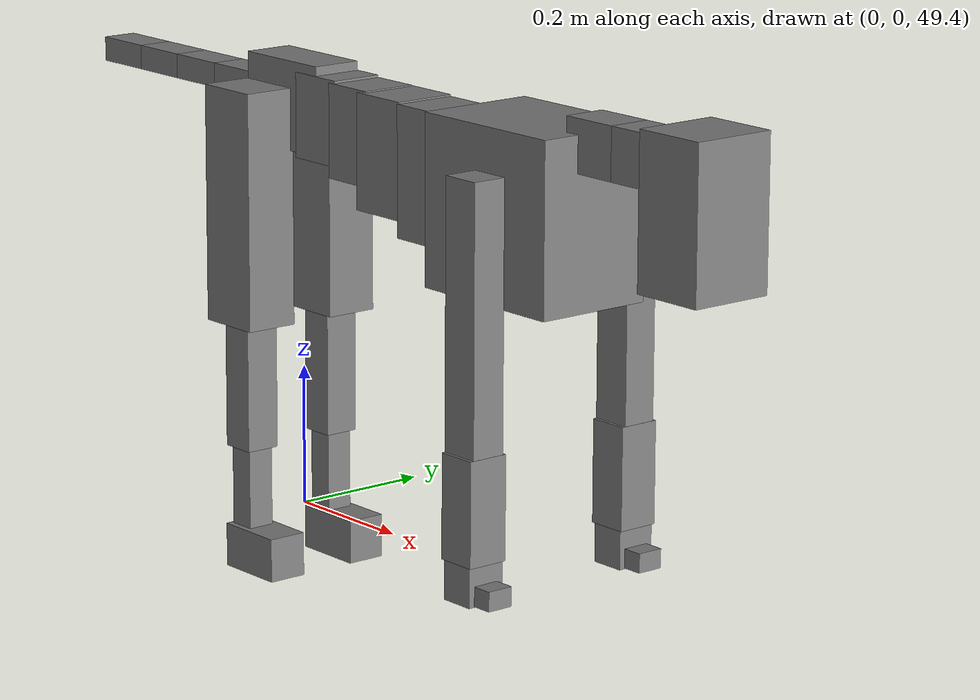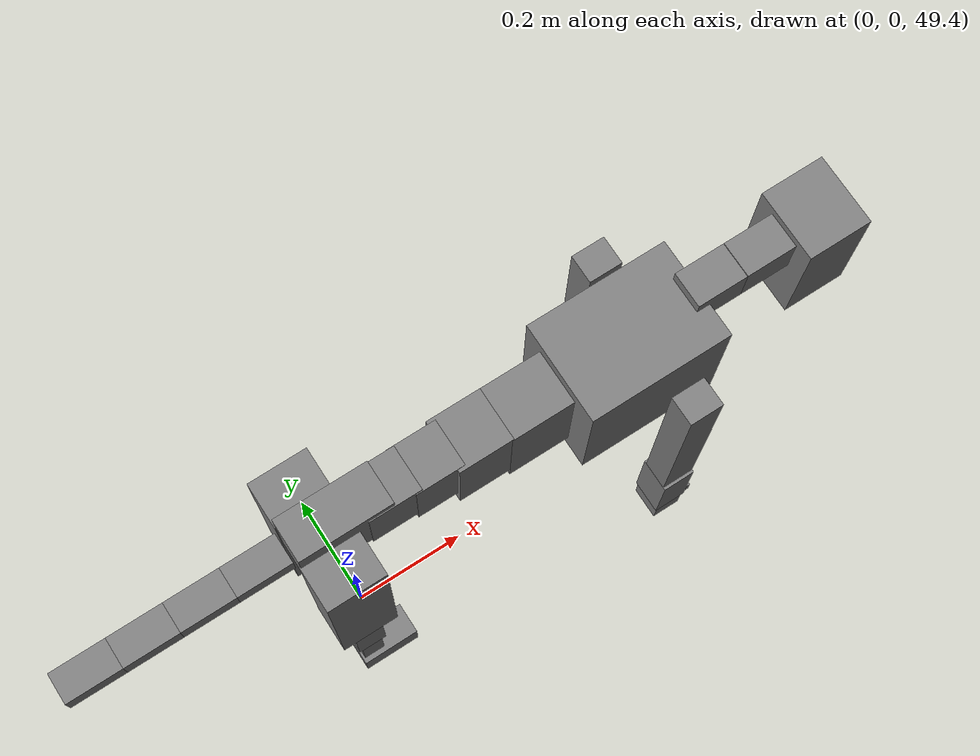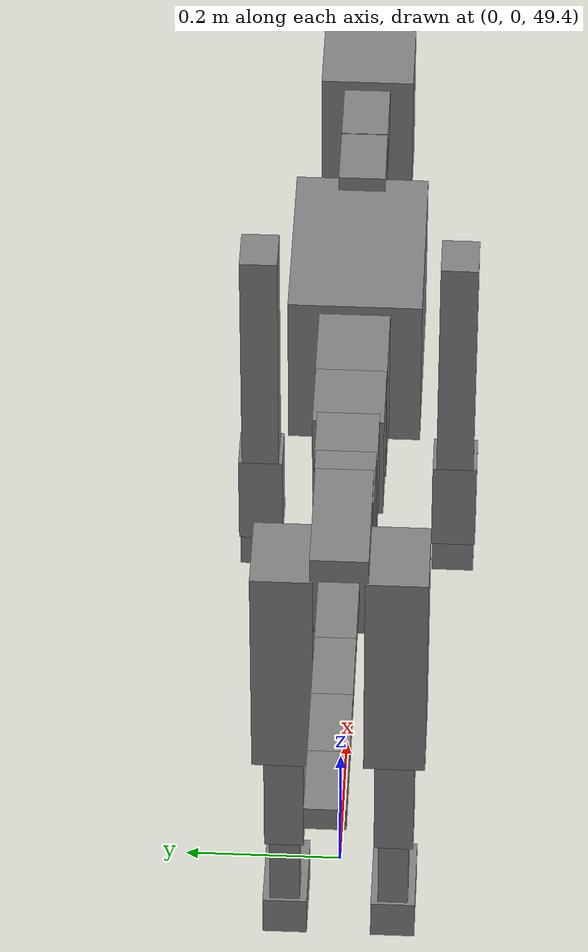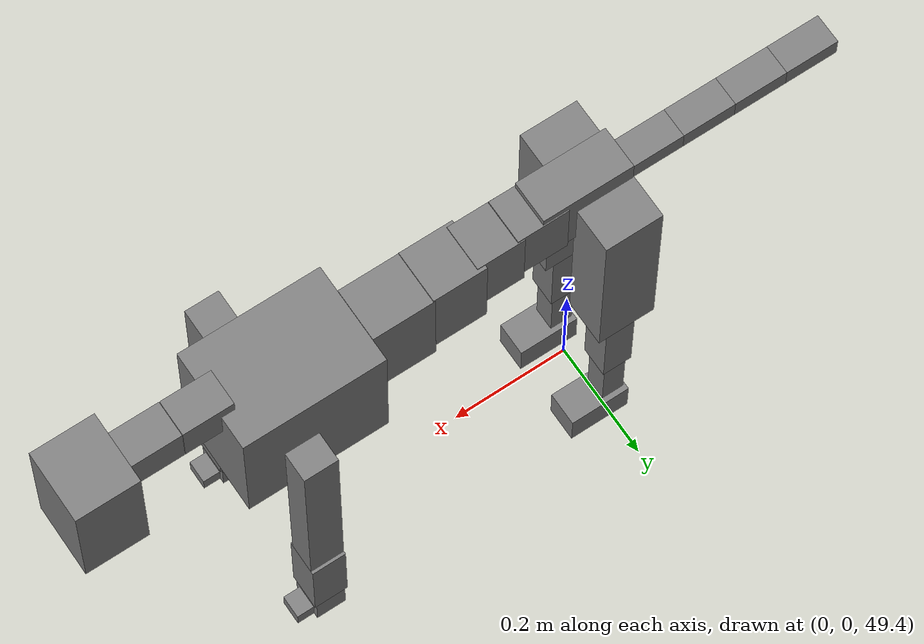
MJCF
<mujoco model="dog">

    <default>
        <joint armature="0.02" stiffness="1" damping="0.2" limited="true"/>
        <geom condim="3" friction="1 0.05 0.05" margin="0.01"/>
        <motor ctrllimited="true" ctrlrange="-1.0 1.0" forcelimited="true" gear="50"/>
    </default>

    <compiler inertiafromgeom="true" angle="radian"/>

    <option timestep="0.016" iterations="50" tolerance="1e-10" solver="Newton" jacobian="dense" cone="pyramidal"/>

    <size nconmax="20000" njmax="60000" nstack="5000000"/>
    <visual>
        <map force="0.1" zfar="30"/>
        <rgba haze="0.15 0.25 0.35 1"/>
        <quality shadowsize="2048"/>
        <global offwidth="800" offheight="800"/>
    </visual>

    <asset>
        <texture type="skybox" builtin="gradient" rgb1="0.3 0.5 0.7" rgb2="0 0 0" width="512" height="512"/>
        <texture name="texplane" type="2d" builtin="checker" rgb1=".2 .3 .4" rgb2=".1 0.15 0.2" width="512" height="512"
                 mark="cross" markrgb=".8 .8 .8"/>
        <texture name="texgeom" type="cube" builtin="flat" mark="cross" width="127" height="1278" rgb1="0.8 0.6 0.4"
                 rgb2="0.8 0.6 0.4" markrgb="1 1 1" random="0.01"/>

        <material name="matplane" reflectance="0.3" texture="texplane" texrepeat="1 1" texuniform="true"/>
        <material name="matgeom" texture="texgeom" texuniform="true" rgba="0.8 0.6 .4 1"/>
    </asset>

    <worldbody>
        <geom name="floor" pos="0 0 0" size="0 0 .25" type="plane" material="matplane" condim="3"/>

        <light directional="false" diffuse=".2 .2 .2" specular="0 0 0" pos="0 0 5" dir="0 0 -1" castshadow="false"/>
        <light mode="targetbodycom" target="torso" directional="false" diffuse=".8 .8 .8" specular="0.3 0.3 0.3"
               pos="0 0 4.0" dir="0 0 -1"/>

        <body name="root" pos="0 0 50">
            <freejoint name="root_1"/>
            <geom type="box" pos="0 0 -0.02" size="0.0774  0.0358  0.063" density="2030"/>

            <body name="spine1" pos="0.054 0 0">
                <joint name="spine1_y" axis="0 1 0" range="0 0.7" limited="true"/>
                <geom type="box" pos="0.02375 0 -0.03" size="0.04375  0.0375  0.05985" density="2030"/>

                <body name="spine2" pos="0.0612 0 0">
                    <joint name="spine2_y" axis="0 1 0" range="-0.15 0.15" limited="true"/>
                    <geom type="box" pos="0.03555  0  -0.04" size="0.04055  0.039  0.06615" density="2030"/>

                    <body name="spine3" pos="0.0730 0 0">
                        <joint name="spine3_y" axis="0 1 0" range="-0.15 0.15" limited="true"/>
                        <geom type="box" pos="0.03555  0  -0.057" size="0.04555  0.0445  0.081" density="2030"/>

                        <body name="spine4" pos="0.0780 0 0">
                            <joint name="spine4_y" axis="0 1 0" range="-0.15 0.15" limited="true"/>
                            <geom type="box" pos="0.05265  0  -0.07" size="0.05265  0.045  0.09135" density="2030"/>

                            <body name="torso" pos="0.1082 0 0">
                                <joint name="torso_y" axis="0 1 0" range="-0.15 0.15" limited="true"/>
                                <geom type="box" pos="0.11925  0  -0.085" size="0.11925  0.085  0.11745"
                                      density="2030"/>

                                <body name="neck1" pos="0.2160  0   0.0180">
                                    <joint name="neck1_y" axis="0 1 0" range="-1.2  -1" limited="true"/>
                                    <geom type="box" pos="0.0423  0  0" size="0.0423  0.03  0.036" density="2325"/>

                                    <body name="neck2" pos="0.0853  0  0">
                                        <joint name="neck2_y" axis="0 1 0" range="0.1  0" limited="true"/>
                                        <geom type="box" pos="0.0423  0  0" size="0.0423  0.03  0.036" density="2325"/>

                                        <body name="head" pos="0.0853  0  0">
                                            <joint name="head_y" axis="0 1 0" range="-0.3  -0.2" limited="true"/>
                                            <geom type="box" pos="0.0531  0  -0.055" size="0.0531  0.06  0.1044"
                                                  density="4030"/>

                                        </body>
                                    </body>
                                </body>

                                <body name="front_shoulder" pos="0.156  0   -0.0480">
                                    <joint name="front_shoulder_y" axis="0 1 0" range="-1 1.5" limited="true"/>
                                    <geom type="box" pos="0 0.13 -0.1689" size="0.0287  0.0245  0.1956" density="1158"/>
                                    <geom type="box" pos="0 -0.13 -0.1689" size="0.0287  0.0245  0.1956"
                                          density="1158"/>

                                    <body name="front_elbow" pos="0  0  -0.3378">
                                        <joint name="front_elbow_y" axis="0 1 0" range="-2 0" limited="true"/>
                                        <geom type="box" pos="0 0.13 -0.0718" size="0.0288  0.0294  0.0718"
                                              density="1081"/>
                                        <geom type="box" pos="0 -0.13 -0.0718" size="0.0288  0.0294  0.0718"
                                              density="1081"/>

                                        <body name="front_wrist" pos="0  0  -0.1436">
                                            <joint name="front_wrist_y" axis="0 1 0" range="-0.2 0" limited="true"/>
                                            <geom type="box" pos="0 0.13 -0.0206" size="0.0251  0.0279  0.0338"
                                                  density="1664"/>
                                            <geom type="box" pos="0 -0.13 -0.0206" size="0.0251  0.0279  0.0338"
                                                  density="1664"/>

                                            <body name="front_finger_end" pos="0  0  -0.0413">
                                                <joint name="front_finger_y" axis="0 1 0" range="-0.4 1"
                                                       limited="true"/>
                                                <geom type="box" pos="0.0191  0.13  0.0015"
                                                      size="0.0351  0.0191  0.0135" density="1515"/>
                                                <geom type="box" pos="0.0191  -0.13  0.0015"
                                                      size="0.0351  0.0191  0.0135" density="1515"/>

                                            </body>

                                        </body>
                                    </body>
                                </body>

                            </body>
                        </body>
                    </body>
                </body>
            </body>

            <body name="back_hip" pos="-0.03 0 -0.018">
                <joint name="back_hip_y" axis="0 1 0" range="-1.5 0.3" limited="true"/>
                <geom type="box" pos="0 0.07 -0.1451" size="0.0491  0.0385  0.1679" density="1154"/>
                <geom type="box" pos="0 -0.07 -0.1451" size="0.0491  0.0385  0.1679" density="1154"/>

                <body name="back_knee" pos="0  0  -0.2902">
                    <joint name="back_knee_y" axis="0 1 0" range="0 2.8" limited="true"/>
                    <geom type="box" pos="0 0.07 -0.0938" size="0.0255  0.0251  0.1093" density="1227"/>
                    <geom type="box" pos="0 -0.07 -0.0938" size="0.0255  0.0251  0.1093" density="1227"/>

                    <body name="back_ankle" pos="0  0  -0.1875">
                        <joint name="back_ankle_y" axis="0 1 0" range="-2.2 0" limited="true"/>
                        <geom type="box" pos="0 0.07 -0.0724" size="0.0194  0.0194  0.0836" density="1284"/>
                        <geom type="box" pos="0 -0.07 -0.0724" size="0.0194  0.0194  0.0836" density="1284"/>

                        <body name="back_toe_end" pos="0  0  -0.1448">
                            <joint name="back_toe_y" axis="0 1 0" range="-0.4 1" limited="true"/>
                            <geom type="box" pos="0.0285  0.07  -0.0161" size="0.0522  0.0285  0.0311" density="1515"/>
                            <geom type="box" pos="0.0285  -0.07  -0.0161" size="0.0522  0.0285  0.0311" density="1515"/>

                        </body>
                    </body>
                </body>
            </body>

            <body name="tail1" pos="-0.074 0 -0.006">
                <joint name="tail1_y" axis="0 1 0" range="-0.2 0.2" limited="true"/>
                <geom type="box" pos="-0.0536  0  0" size="0.045  0.025  0.0175" density="1587"/>

                <body name="tail2" pos="-0.09 0 0">
                    <joint name="tail2_y" axis="0 1 0" range="-0.2 0.2" limited="true"/>
                    <geom type="box" pos="-0.0536  0  0" size="0.045  0.025  0.0175" density="1587"/>

                    <body name="tail3" pos="-0.09 0 0">
                        <joint name="tail3_y" axis="0 1 0" range="-0.2 0.2" limited="true"/>
                        <geom type="box" pos="-0.0536  0  0" size="0.045  0.025  0.0175" density="1587"/>

                        <body name="tail4" pos="-0.09 0 0">
                            <joint name="tail4_y" axis="0 1 0" range="-0.2 0.2" limited="true"/>
                            <geom type="box" pos="-0.0536  0  0" size="0.045  0.025  0.0175" density="1587"/>

                        </body>
                    </body>
                </body>
            </body>
        </body>
    </worldbody>

    <actuator>
        <motor joint="spine1_y" forcerange="-150 150     "/>
        <motor joint="spine2_y" forcerange="-150 150     "/>
        <motor joint="spine3_y" forcerange="-150 150     "/>
        <motor joint="spine4_y" forcerange="-150 150     "/>
        <motor joint="torso_y" forcerange="-150 150     "/>
        <motor joint="neck1_y" forcerange="-100 100       "/>
        <motor joint="neck2_y" forcerange="-100 100       "/>
        <motor joint="head_y" forcerange="-150 150       "/>
        <motor joint="front_shoulder_y" forcerange="-148.88 114.60"/>
        <motor joint="front_elbow_y" forcerange="-164.93 148.96"/>
        <motor joint="front_wrist_y" forcerange="-109.44 113.69"/>
        <motor joint="front_finger_y" forcerange="-42.02 20.02"/>
        <motor joint="back_hip_y" forcerange="-343.30 369.95"/>
        <motor joint="back_knee_y" forcerange="-310.78 254.66"/>
        <motor joint="back_angle_y" forcerange="-79.03 131.84"/>
        <motor joint="back_toe_y" forcerange="-81.72 66.27"/>
        <motor joint="tail1_y" forcerange="-50 50     "/>
        <motor joint="tail2_y" forcerange="-50 50     "/>
        <motor joint="tail3_y" forcerange="-50 50     "/>
        <motor joint="tail4_y" forcerange="-50 50     "/>
    </actuator>
</mujoco>
